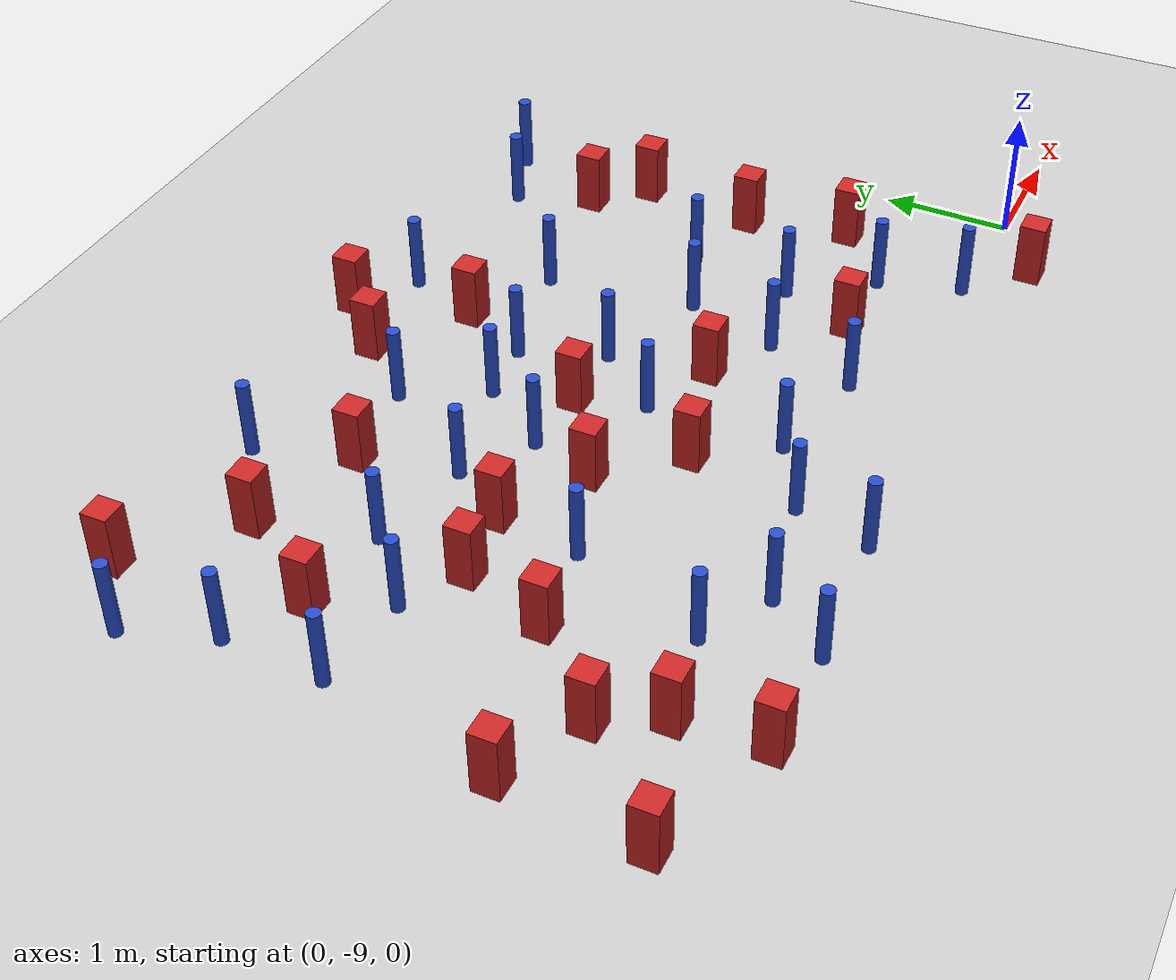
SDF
<sdf version="1.6">
 <world name="default">
  <model name="ground_plane">
   <static>1</static>
   <link name="link">
    <collision name="collision">
     <geometry><plane><normal>0 0 1</normal><size>100 100</size></plane></geometry>
     <surface><friction><ode><mu>100</mu><mu2>50</mu2></ode></friction></surface>
    </collision>
    <visual name="visual">
     <cast_shadows>0</cast_shadows>
     <geometry><plane><normal>0 0 1</normal><size>100 100</size></plane></geometry>
     <material>
      <ambient>1.0 1.0 1.0 1.0</ambient>
      <diffuse>0.8 0.8 0.8 1.0</diffuse>
      <specular>0.01 0.01 0.01 1.000000</specular>
     </material>
    </visual>
   </link>
  </model>
  <model name="square_post_obstacle4">
   <static>true</static>
   <pose>-5.67740192875 -7.65880468433 1.91545236811e-07 -7.35059704564e-06 1.12565212e-07 2.39332434364e-05</pose>
   <link name="link">
    <pose>0 0 0.25 0 -0 0</pose>
    <inertial>
     <mass>100</mass>
     <inertia>
      <ixx>0.166667</ixx>
      <ixy>0</ixy>
      <ixz>0</ixz>
      <iyy>0.166667</iyy>
      <iyz>0</iyz>
      <izz>0.166667</izz>
     </inertia>
    </inertial>
    <collision name="collision"><geometry><box><size>.2 .2 .5</size></box></geometry></collision>
    <visual name="visual">
     <geometry><box><size>.2 .2 .5</size></box></geometry>
     <material>
      <script><name>Gazebo/Red</name><uri>file://media/materials/scripts/gazebo.material</uri></script>
     </material>
    </visual>
   </link>
  </model>
  <model name="pole_obstacle8">
   <static>true</static>
   <pose>-4.06872563296 -6.78109198846 7.38925637345e-09 -8.47170692796e-08 1.24976764786e-08 -1.74513093032e-07</pose>
   <link name="link">
    <pose>0 0 0.3 0 -0 0</pose>
    <inertial>
     <mass>1</mass>
     <inertia><ixx>0.145833</ixx><ixy>0</ixy><ixz>0</ixz><iyy>0.145833</iyy><iyz>0</iyz><izz>0.125</izz></inertia>
    </inertial>
    <collision name="collision">
     <geometry><cylinder><radius>0.05</radius><length>.6</length></cylinder></geometry>
    </collision>
    <visual name="visual">
     <geometry><cylinder><radius>0.05</radius><length>.6</length></cylinder></geometry>
     <material>
      <script><name>Gazebo/Blue</name><uri>file://media/materials/scripts/gazebo.material</uri></script>
     </material>
    </visual>
   </link>
  </model>
  <model name="square_post_obstacle18">
   <static>true</static>
   <pose>-3.52603695999 -6.82466076162 1.91545236811e-07 -7.35059704564e-06 1.12565212e-07 2.39332434364e-05</pose>
   <link name="link">
    <pose>0 0 0.25 0 -0 0</pose>
    <inertial>
     <mass>100</mass>
     <inertia>
      <ixx>0.166667</ixx>
      <ixy>0</ixy>
      <ixz>0</ixz>
      <iyy>0.166667</iyy>
      <iyz>0</iyz>
      <izz>0.166667</izz>
     </inertia>
    </inertial>
    <collision name="collision"><geometry><box><size>.2 .2 .5</size></box></geometry></collision>
    <visual name="visual">
     <geometry><box><size>.2 .2 .5</size></box></geometry>
     <material>
      <script><name>Gazebo/Red</name><uri>file://media/materials/scripts/gazebo.material</uri></script>
     </material>
    </visual>
   </link>
  </model>
  <model name="pole_obstacle10">
   <static>true</static>
   <pose>-2.24000977725 -5.9753968946 7.38925637345e-09 -8.47170692798e-08 1.24976765033e-08 -1.74513093019e-07</pose>
   <link name="link">
    <pose>0 0 0.3 0 -0 0</pose>
    <inertial>
     <mass>1</mass>
     <inertia><ixx>0.145833</ixx><ixy>0</ixy><ixz>0</ixz><iyy>0.145833</iyy><iyz>0</iyz><izz>0.125</izz></inertia>
    </inertial>
    <collision name="collision">
     <geometry><cylinder><radius>0.05</radius><length>.6</length></cylinder></geometry>
    </collision>
    <visual name="visual">
     <geometry><cylinder><radius>0.05</radius><length>.6</length></cylinder></geometry>
     <material>
      <script><name>Gazebo/Blue</name><uri>file://media/materials/scripts/gazebo.material</uri></script>
     </material>
    </visual>
   </link>
  </model>
  <model name="square_post_obstacle23">
   <static>true</static>
   <pose>-1.86108736659 -8.30667899572 1.91545236811e-07 -7.35059704564e-06 1.12565212e-07 2.39332434364e-05</pose>
   <link name="link">
    <pose>0 0 0.25 0 -0 0</pose>
    <inertial>
     <mass>100</mass>
     <inertia>
      <ixx>0.166667</ixx>
      <ixy>0</ixy>
      <ixz>0</ixz>
      <iyy>0.166667</iyy>
      <iyz>0</iyz>
      <izz>0.166667</izz>
     </inertia>
    </inertial>
    <collision name="collision"><geometry><box><size>.2 .2 .5</size></box></geometry></collision>
    <visual name="visual">
     <geometry><box><size>.2 .2 .5</size></box></geometry>
     <material>
      <script><name>Gazebo/Red</name><uri>file://media/materials/scripts/gazebo.material</uri></script>
     </material>
    </visual>
   </link>
  </model>
  <model name="square_post_obstacle25">
   <static>true</static>
   <pose>-6.1199734361 -6.20377883608 1.91545236811e-07 -7.35059704564e-06 1.12565212e-07 2.39332434364e-05</pose>
   <link name="link">
    <pose>0 0 0.25 0 -0 0</pose>
    <inertial>
     <mass>100</mass>
     <inertia>
      <ixx>0.166667</ixx>
      <ixy>0</ixy>
      <ixz>0</ixz>
      <iyy>0.166667</iyy>
      <iyz>0</iyz>
      <izz>0.166667</izz>
     </inertia>
    </inertial>
    <collision name="collision"><geometry><box><size>.2 .2 .5</size></box></geometry></collision>
    <visual name="visual">
     <geometry><box><size>.2 .2 .5</size></box></geometry>
     <material>
      <script><name>Gazebo/Red</name><uri>file://media/materials/scripts/gazebo.material</uri></script>
     </material>
    </visual>
   </link>
  </model>
  <model name="square_post_obstacle28">
   <static>true</static>
   <pose>-0.678399505463 -7.88053539245 1.91545236811e-07 -7.35059704564e-06 1.12565212e-07 2.39332434364e-05</pose>
   <link name="link">
    <pose>0 0 0.25 0 -0 0</pose>
    <inertial>
     <mass>100</mass>
     <inertia>
      <ixx>0.166667</ixx>
      <ixy>0</ixy>
      <ixz>0</ixz>
      <iyy>0.166667</iyy>
      <iyz>0</iyz>
      <izz>0.166667</izz>
     </inertia>
    </inertial>
    <collision name="collision"><geometry><box><size>.2 .2 .5</size></box></geometry></collision>
    <visual name="visual">
     <geometry><box><size>.2 .2 .5</size></box></geometry>
     <material>
      <script><name>Gazebo/Red</name><uri>file://media/materials/scripts/gazebo.material</uri></script>
     </material>
    </visual>
   </link>
  </model>
  <model name="pole_obstacle28">
   <static>true</static>
   <pose>-2.69804235157 -5.05034035419 7.38925637345e-09 -8.47170692798e-08 1.24976765033e-08 -1.74513093019e-07</pose>
   <link name="link">
    <pose>0 0 0.3 0 -0 0</pose>
    <inertial>
     <mass>1</mass>
     <inertia><ixx>0.145833</ixx><ixy>0</ixy><ixz>0</ixz><iyy>0.145833</iyy><iyz>0</iyz><izz>0.125</izz></inertia>
    </inertial>
    <collision name="collision">
     <geometry><cylinder><radius>0.05</radius><length>.6</length></cylinder></geometry>
    </collision>
    <visual name="visual">
     <geometry><cylinder><radius>0.05</radius><length>.6</length></cylinder></geometry>
     <material>
      <script><name>Gazebo/Blue</name><uri>file://media/materials/scripts/gazebo.material</uri></script>
     </material>
    </visual>
   </link>
  </model>
  <model name="pole_obstacle30">
   <static>true</static>
   <pose>-0.749170889706 -4.99342743789 7.38925637345e-09 -8.471706928e-08 1.24976765086e-08 -1.74513093015e-07</pose>
   <link name="link">
    <pose>0 0 0.3 0 -0 0</pose>
    <inertial>
     <mass>1</mass>
     <inertia><ixx>0.145833</ixx><ixy>0</ixy><ixz>0</ixz><iyy>0.145833</iyy><iyz>0</iyz><izz>0.125</izz></inertia>
    </inertial>
    <collision name="collision">
     <geometry><cylinder><radius>0.05</radius><length>.6</length></cylinder></geometry>
    </collision>
    <visual name="visual">
     <geometry><cylinder><radius>0.05</radius><length>.6</length></cylinder></geometry>
     <material>
      <script><name>Gazebo/Blue</name><uri>file://media/materials/scripts/gazebo.material</uri></script>
     </material>
    </visual>
   </link>
  </model>
  <model name="pole_obstacle33">
   <static>true</static>
   <pose>-2.9397366712 -6.81391367461 7.38925637345e-09 -8.47170692798e-08 1.24976765033e-08 -1.74513093019e-07</pose>
   <link name="link">
    <pose>0 0 0.3 0 -0 0</pose>
    <inertial>
     <mass>1</mass>
     <inertia><ixx>0.145833</ixx><ixy>0</ixy><ixz>0</ixz><iyy>0.145833</iyy><iyz>0</iyz><izz>0.125</izz></inertia>
    </inertial>
    <collision name="collision">
     <geometry><cylinder><radius>0.05</radius><length>.6</length></cylinder></geometry>
    </collision>
    <visual name="visual">
     <geometry><cylinder><radius>0.05</radius><length>.6</length></cylinder></geometry>
     <material>
      <script><name>Gazebo/Blue</name><uri>file://media/materials/scripts/gazebo.material</uri></script>
     </material>
    </visual>
   </link>
  </model>
  <model name="pole_obstacle38">
   <static>true</static>
   <pose>-3.17716623244 -6.1789033547 7.38925637345e-09 -8.47170692794e-08 1.24976764468e-08 -1.7451309304e-07</pose>
   <link name="link">
    <pose>0 0 0.3 0 -0 0</pose>
    <inertial>
     <mass>1</mass>
     <inertia><ixx>0.145833</ixx><ixy>0</ixy><ixz>0</ixz><iyy>0.145833</iyy><iyz>0</iyz><izz>0.125</izz></inertia>
    </inertial>
    <collision name="collision">
     <geometry><cylinder><radius>0.05</radius><length>.6</length></cylinder></geometry>
    </collision>
    <visual name="visual">
     <geometry><cylinder><radius>0.05</radius><length>.6</length></cylinder></geometry>
     <material>
      <script><name>Gazebo/Blue</name><uri>file://media/materials/scripts/gazebo.material</uri></script>
     </material>
    </visual>
   </link>
  </model>
  <model name="pole_obstacle44">
   <static>true</static>
   <pose>-4.57552629762 -6.45222405119 7.38925637345e-09 -8.47170692796e-08 1.24976764786e-08 -1.74513093032e-07</pose>
   <link name="link">
    <pose>0 0 0.3 0 -0 0</pose>
    <inertial>
     <mass>1</mass>
     <inertia><ixx>0.145833</ixx><ixy>0</ixy><ixz>0</ixz><iyy>0.145833</iyy><iyz>0</iyz><izz>0.125</izz></inertia>
    </inertial>
    <collision name="collision">
     <geometry><cylinder><radius>0.05</radius><length>.6</length></cylinder></geometry>
    </collision>
    <visual name="visual">
     <geometry><cylinder><radius>0.05</radius><length>.6</length></cylinder></geometry>
     <material>
      <script><name>Gazebo/Blue</name><uri>file://media/materials/scripts/gazebo.material</uri></script>
     </material>
    </visual>
   </link>
  </model>
  <model name="pole_obstacle48">
   <static>true</static>
   <pose>-1.49067473335 -6.89552985593 7.38925637345e-09 -8.47170692799e-08 1.24976765033e-08 -1.74513093018e-07</pose>
   <link name="link">
    <pose>0 0 0.3 0 -0 0</pose>
    <inertial>
     <mass>1</mass>
     <inertia><ixx>0.145833</ixx><ixy>0</ixy><ixz>0</ixz><iyy>0.145833</iyy><iyz>0</iyz><izz>0.125</izz></inertia>
    </inertial>
    <collision name="collision">
     <geometry><cylinder><radius>0.05</radius><length>.6</length></cylinder></geometry>
    </collision>
    <visual name="visual">
     <geometry><cylinder><radius>0.05</radius><length>.6</length></cylinder></geometry>
     <material>
      <script><name>Gazebo/Blue</name><uri>file://media/materials/scripts/gazebo.material</uri></script>
     </material>
    </visual>
   </link>
  </model>
  <model name="pole_obstacle49">
   <static>true</static>
   <pose>-4.82207548972 -8.88022354547 7.38925637345e-09 -8.471706928e-08 1.24976765081e-08 -1.74513093015e-07</pose>
   <link name="link">
    <pose>0 0 0.3 0 -0 0</pose>
    <inertial>
     <mass>1</mass>
     <inertia><ixx>0.145833</ixx><ixy>0</ixy><ixz>0</ixz><iyy>0.145833</iyy><iyz>0</iyz><izz>0.125</izz></inertia>
    </inertial>
    <collision name="collision">
     <geometry><cylinder><radius>0.05</radius><length>.6</length></cylinder></geometry>
    </collision>
    <visual name="visual">
     <geometry><cylinder><radius>0.05</radius><length>.6</length></cylinder></geometry>
     <material>
      <script><name>Gazebo/Blue</name><uri>file://media/materials/scripts/gazebo.material</uri></script>
     </material>
    </visual>
   </link>
  </model>
  <model name="pole_obstacle66">
   <static>true</static>
   <pose>-4.09273205385 -9.27557864412 7.38925637345e-09 -8.471706928e-08 1.24976765081e-08 -1.74513093015e-07</pose>
   <link name="link">
    <pose>0 0 0.3 0 -0 0</pose>
    <inertial>
     <mass>1</mass>
     <inertia><ixx>0.145833</ixx><ixy>0</ixy><ixz>0</ixz><iyy>0.145833</iyy><iyz>0</iyz><izz>0.125</izz></inertia>
    </inertial>
    <collision name="collision">
     <geometry><cylinder><radius>0.05</radius><length>.6</length></cylinder></geometry>
    </collision>
    <visual name="visual">
     <geometry><cylinder><radius>0.05</radius><length>.6</length></cylinder></geometry>
     <material>
      <script><name>Gazebo/Blue</name><uri>file://media/materials/scripts/gazebo.material</uri></script>
     </material>
    </visual>
   </link>
  </model>
  <model name="square_post_obstacle69">
   <static>true</static>
   <pose>-0.837891639129 -7.0748849736 1.91545236811e-07 -7.35059704564e-06 1.12565212e-07 2.39332434364e-05</pose>
   <link name="link">
    <pose>0 0 0.25 0 -0 0</pose>
    <inertial>
     <mass>100</mass>
     <inertia>
      <ixx>0.166667</ixx>
      <ixy>0</ixy>
      <ixz>0</ixz>
      <iyy>0.166667</iyy>
      <iyz>0</iyz>
      <izz>0.166667</izz>
     </inertia>
    </inertial>
    <collision name="collision"><geometry><box><size>.2 .2 .5</size></box></geometry></collision>
    <visual name="visual">
     <geometry><box><size>.2 .2 .5</size></box></geometry>
     <material>
      <script><name>Gazebo/Red</name><uri>file://media/materials/scripts/gazebo.material</uri></script>
     </material>
    </visual>
   </link>
  </model>
  <model name="pole_obstacle67">
   <static>true</static>
   <pose>-4.96563736126 -5.00681654496 7.38925637345e-09 -8.47170692796e-08 1.24976764786e-08 -1.74513093032e-07</pose>
   <link name="link">
    <pose>0 0 0.3 0 -0 0</pose>
    <inertial>
     <mass>1</mass>
     <inertia><ixx>0.145833</ixx><ixy>0</ixy><ixz>0</ixz><iyy>0.145833</iyy><iyz>0</iyz><izz>0.125</izz></inertia>
    </inertial>
    <collision name="collision">
     <geometry><cylinder><radius>0.05</radius><length>.6</length></cylinder></geometry>
    </collision>
    <visual name="visual">
     <geometry><cylinder><radius>0.05</radius><length>.6</length></cylinder></geometry>
     <material>
      <script><name>Gazebo/Blue</name><uri>file://media/materials/scripts/gazebo.material</uri></script>
     </material>
    </visual>
   </link>
  </model>
  <model name="square_post_obstacle71">
   <static>true</static>
   <pose>-5.45312529908 -6.99596524487 1.91545236811e-07 -7.35059704564e-06 1.12565212e-07 2.39332434364e-05</pose>
   <link name="link">
    <pose>0 0 0.25 0 -0 0</pose>
    <inertial>
     <mass>100</mass>
     <inertia>
      <ixx>0.166667</ixx>
      <ixy>0</ixy>
      <ixz>0</ixz>
      <iyy>0.166667</iyy>
      <iyz>0</iyz>
      <izz>0.166667</izz>
     </inertia>
    </inertial>
    <collision name="collision"><geometry><box><size>.2 .2 .5</size></box></geometry></collision>
    <visual name="visual">
     <geometry><box><size>.2 .2 .5</size></box></geometry>
     <material>
      <script><name>Gazebo/Red</name><uri>file://media/materials/scripts/gazebo.material</uri></script>
     </material>
    </visual>
   </link>
  </model>
  <model name="pole_obstacle74">
   <static>true</static>
   <pose>-3.94244579799 -8.69810518039 7.38925637345e-09 -8.47170692793e-08 1.24976764408e-08 -1.74513093041e-07</pose>
   <link name="link">
    <pose>0 0 0.3 0 -0 0</pose>
    <inertial>
     <mass>1</mass>
     <inertia><ixx>0.145833</ixx><ixy>0</ixy><ixz>0</ixz><iyy>0.145833</iyy><iyz>0</iyz><izz>0.125</izz></inertia>
    </inertial>
    <collision name="collision">
     <geometry><cylinder><radius>0.05</radius><length>.6</length></cylinder></geometry>
    </collision>
    <visual name="visual">
     <geometry><cylinder><radius>0.05</radius><length>.6</length></cylinder></geometry>
     <material>
      <script><name>Gazebo/Blue</name><uri>file://media/materials/scripts/gazebo.material</uri></script>
     </material>
    </visual>
   </link>
  </model>
  <model name="pole_obstacle82">
   <static>true</static>
   <pose>-5.34162178956 -8.58294965085 7.38925637345e-09 -8.471706928e-08 1.24976765081e-08 -1.74513093015e-07</pose>
   <link name="link">
    <pose>0 0 0.3 0 -0 0</pose>
    <inertial>
     <mass>1</mass>
     <inertia><ixx>0.145833</ixx><ixy>0</ixy><ixz>0</ixz><iyy>0.145833</iyy><iyz>0</iyz><izz>0.125</izz></inertia>
    </inertial>
    <collision name="collision">
     <geometry><cylinder><radius>0.05</radius><length>.6</length></cylinder></geometry>
    </collision>
    <visual name="visual">
     <geometry><cylinder><radius>0.05</radius><length>.6</length></cylinder></geometry>
     <material>
      <script><name>Gazebo/Blue</name><uri>file://media/materials/scripts/gazebo.material</uri></script>
     </material>
    </visual>
   </link>
  </model>
  <model name="pole_obstacle85">
   <static>true</static>
   <pose>-2.07760983227 -7.12698199725 7.38925637345e-09 -8.47170692798e-08 1.24976765033e-08 -1.74513093019e-07</pose>
   <link name="link">
    <pose>0 0 0.3 0 -0 0</pose>
    <inertial>
     <mass>1</mass>
     <inertia><ixx>0.145833</ixx><ixy>0</ixy><ixz>0</ixz><iyy>0.145833</iyy><iyz>0</iyz><izz>0.125</izz></inertia>
    </inertial>
    <collision name="collision">
     <geometry><cylinder><radius>0.05</radius><length>.6</length></cylinder></geometry>
    </collision>
    <visual name="visual">
     <geometry><cylinder><radius>0.05</radius><length>.6</length></cylinder></geometry>
     <material>
      <script><name>Gazebo/Blue</name><uri>file://media/materials/scripts/gazebo.material</uri></script>
     </material>
    </visual>
   </link>
  </model>
  <model name="pole_obstacle86">
   <static>true</static>
   <pose>-3.36721677891 -7.32817130263 7.38925637345e-09 -8.47170692794e-08 1.24976764468e-08 -1.7451309304e-07</pose>
   <link name="link">
    <pose>0 0 0.3 0 -0 0</pose>
    <inertial>
     <mass>1</mass>
     <inertia><ixx>0.145833</ixx><ixy>0</ixy><ixz>0</ixz><iyy>0.145833</iyy><iyz>0</iyz><izz>0.125</izz></inertia>
    </inertial>
    <collision name="collision">
     <geometry><cylinder><radius>0.05</radius><length>.6</length></cylinder></geometry>
    </collision>
    <visual name="visual">
     <geometry><cylinder><radius>0.05</radius><length>.6</length></cylinder></geometry>
     <material>
      <script><name>Gazebo/Blue</name><uri>file://media/materials/scripts/gazebo.material</uri></script>
     </material>
    </visual>
   </link>
  </model>
  <model name="square_post_obstacle85">
   <static>true</static>
   <pose>-4.24555383658 -7.28909448333 1.91545236811e-07 -7.35059704564e-06 1.12565212e-07 2.39332434364e-05</pose>
   <link name="link">
    <pose>0 0 0.25 0 -0 0</pose>
    <inertial>
     <mass>100</mass>
     <inertia>
      <ixx>0.166667</ixx>
      <ixy>0</ixy>
      <ixz>0</ixz>
      <iyy>0.166667</iyy>
      <iyz>0</iyz>
      <izz>0.166667</izz>
     </inertia>
    </inertial>
    <collision name="collision"><geometry><box><size>.2 .2 .5</size></box></geometry></collision>
    <visual name="visual">
     <geometry><box><size>.2 .2 .5</size></box></geometry>
     <material>
      <script><name>Gazebo/Red</name><uri>file://media/materials/scripts/gazebo.material</uri></script>
     </material>
    </visual>
   </link>
  </model>
  <model name="square_post_obstacle89">
   <static>true</static>
   <pose>-0.577084453289 -9.35906345067 1.91545236811e-07 -7.35059704564e-06 1.12565212e-07 2.39332434364e-05</pose>
   <link name="link">
    <pose>0 0 0.25 0 -0 0</pose>
    <inertial>
     <mass>100</mass>
     <inertia>
      <ixx>0.166667</ixx>
      <ixy>0</ixy>
      <ixz>0</ixz>
      <iyy>0.166667</iyy>
      <iyz>0</iyz>
      <izz>0.166667</izz>
     </inertia>
    </inertial>
    <collision name="collision"><geometry><box><size>.2 .2 .5</size></box></geometry></collision>
    <visual name="visual">
     <geometry><box><size>.2 .2 .5</size></box></geometry>
     <material>
      <script><name>Gazebo/Red</name><uri>file://media/materials/scripts/gazebo.material</uri></script>
     </material>
    </visual>
   </link>
  </model>
  <model name="pole_obstacle110">
   <static>true</static>
   <pose>-6.60540538165 -5.86977234847 7.38925637345e-09 -8.47170692796e-08 1.24976764786e-08 -1.74513093032e-07</pose>
   <link name="link">
    <pose>0 0 0.3 0 -0 0</pose>
    <inertial>
     <mass>1</mass>
     <inertia><ixx>0.145833</ixx><ixy>0</ixy><ixz>0</ixz><iyy>0.145833</iyy><iyz>0</iyz><izz>0.125</izz></inertia>
    </inertial>
    <collision name="collision">
     <geometry><cylinder><radius>0.05</radius><length>.6</length></cylinder></geometry>
    </collision>
    <visual name="visual">
     <geometry><cylinder><radius>0.05</radius><length>.6</length></cylinder></geometry>
     <material>
      <script><name>Gazebo/Blue</name><uri>file://media/materials/scripts/gazebo.material</uri></script>
     </material>
    </visual>
   </link>
  </model>
  <model name="square_post_obstacle99">
   <static>true</static>
   <pose>-4.74569914821 -5.73688360788 1.91545236811e-07 -7.35059704564e-06 1.12565212e-07 2.39332434364e-05</pose>
   <link name="link">
    <pose>0 0 0.25 0 -0 0</pose>
    <inertial>
     <mass>100</mass>
     <inertia>
      <ixx>0.166667</ixx>
      <ixy>0</ixy>
      <ixz>0</ixz>
      <iyy>0.166667</iyy>
      <iyz>0</iyz>
      <izz>0.166667</izz>
     </inertia>
    </inertial>
    <collision name="collision"><geometry><box><size>.2 .2 .5</size></box></geometry></collision>
    <visual name="visual">
     <geometry><box><size>.2 .2 .5</size></box></geometry>
     <material>
      <script><name>Gazebo/Red</name><uri>file://media/materials/scripts/gazebo.material</uri></script>
     </material>
    </visual>
   </link>
  </model>
  <model name="square_post_obstacle100">
   <static>true</static>
   <pose>-6.28164705328 -8.27621207108 1.91545236811e-07 -7.35059704564e-06 1.12565212e-07 2.39332434364e-05</pose>
   <link name="link">
    <pose>0 0 0.25 0 -0 0</pose>
    <inertial>
     <mass>100</mass>
     <inertia>
      <ixx>0.166667</ixx>
      <ixy>0</ixy>
      <ixz>0</ixz>
      <iyy>0.166667</iyy>
      <iyz>0</iyz>
      <izz>0.166667</izz>
     </inertia>
    </inertial>
    <collision name="collision"><geometry><box><size>.2 .2 .5</size></box></geometry></collision>
    <visual name="visual">
     <geometry><box><size>.2 .2 .5</size></box></geometry>
     <material>
      <script><name>Gazebo/Red</name><uri>file://media/materials/scripts/gazebo.material</uri></script>
     </material>
    </visual>
   </link>
  </model>
  <model name="pole_obstacle120">
   <static>true</static>
   <pose>-6.82796881919 -5.2227189486 7.38925637345e-09 -8.47170692796e-08 1.24976764786e-08 -1.74513093032e-07</pose>
   <link name="link">
    <pose>0 0 0.3 0 -0 0</pose>
    <inertial>
     <mass>1</mass>
     <inertia><ixx>0.145833</ixx><ixy>0</ixy><ixz>0</ixz><iyy>0.145833</iyy><iyz>0</iyz><izz>0.125</izz></inertia>
    </inertial>
    <collision name="collision">
     <geometry><cylinder><radius>0.05</radius><length>.6</length></cylinder></geometry>
    </collision>
    <visual name="visual">
     <geometry><cylinder><radius>0.05</radius><length>.6</length></cylinder></geometry>
     <material>
      <script><name>Gazebo/Blue</name><uri>file://media/materials/scripts/gazebo.material</uri></script>
     </material>
    </visual>
   </link>
  </model>
  <model name="square_post_obstacle112">
   <static>true</static>
   <pose>-3.59576024668 -5.17177092835 1.91545236811e-07 -7.35059704564e-06 1.12565212e-07 2.39332434364e-05</pose>
   <link name="link">
    <pose>0 0 0.25 0 -0 0</pose>
    <inertial>
     <mass>100</mass>
     <inertia>
      <ixx>0.166667</ixx>
      <ixy>0</ixy>
      <ixz>0</ixz>
      <iyy>0.166667</iyy>
      <iyz>0</iyz>
      <izz>0.166667</izz>
     </inertia>
    </inertial>
    <collision name="collision"><geometry><box><size>.2 .2 .5</size></box></geometry></collision>
    <visual name="visual">
     <geometry><box><size>.2 .2 .5</size></box></geometry>
     <material>
      <script><name>Gazebo/Red</name><uri>file://media/materials/scripts/gazebo.material</uri></script>
     </material>
    </visual>
   </link>
  </model>
  <model name="pole_obstacle122">
   <static>true</static>
   <pose>-1.20031246389 -8.31445013104 7.38925637345e-09 -8.47170692798e-08 1.24976764881e-08 -1.74513093027e-07</pose>
   <link name="link">
    <pose>0 0 0.3 0 -0 0</pose>
    <inertial>
     <mass>1</mass>
     <inertia><ixx>0.145833</ixx><ixy>0</ixy><ixz>0</ixz><iyy>0.145833</iyy><iyz>0</iyz><izz>0.125</izz></inertia>
    </inertial>
    <collision name="collision">
     <geometry><cylinder><radius>0.05</radius><length>.6</length></cylinder></geometry>
    </collision>
    <visual name="visual">
     <geometry><cylinder><radius>0.05</radius><length>.6</length></cylinder></geometry>
     <material>
      <script><name>Gazebo/Blue</name><uri>file://media/materials/scripts/gazebo.material</uri></script>
     </material>
    </visual>
   </link>
  </model>
  <model name="square_post_obstacle114">
   <static>true</static>
   <pose>-3.76543544539 -7.84607150306 1.91545236811e-07 -7.35059704564e-06 1.12565212e-07 2.39332434364e-05</pose>
   <link name="link">
    <pose>0 0 0.25 0 -0 0</pose>
    <inertial>
     <mass>100</mass>
     <inertia>
      <ixx>0.166667</ixx>
      <ixy>0</ixy>
      <ixz>0</ixz>
      <iyy>0.166667</iyy>
      <iyz>0</iyz>
      <izz>0.166667</izz>
     </inertia>
    </inertial>
    <collision name="collision"><geometry><box><size>.2 .2 .5</size></box></geometry></collision>
    <visual name="visual">
     <geometry><box><size>.2 .2 .5</size></box></geometry>
     <material>
      <script><name>Gazebo/Red</name><uri>file://media/materials/scripts/gazebo.material</uri></script>
     </material>
    </visual>
   </link>
  </model>
  <model name="pole_obstacle131">
   <static>true</static>
   <pose>-5.16393632107 -9.35020786594 7.38925637345e-09 -8.471706928e-08 1.24976765081e-08 -1.74513093015e-07</pose>
   <link name="link">
    <pose>0 0 0.3 0 -0 0</pose>
    <inertial>
     <mass>1</mass>
     <inertia><ixx>0.145833</ixx><ixy>0</ixy><ixz>0</ixz><iyy>0.145833</iyy><iyz>0</iyz><izz>0.125</izz></inertia>
    </inertial>
    <collision name="collision">
     <geometry><cylinder><radius>0.05</radius><length>.6</length></cylinder></geometry>
    </collision>
    <visual name="visual">
     <geometry><cylinder><radius>0.05</radius><length>.6</length></cylinder></geometry>
     <material>
      <script><name>Gazebo/Blue</name><uri>file://media/materials/scripts/gazebo.material</uri></script>
     </material>
    </visual>
   </link>
  </model>
  <model name="pole_obstacle133">
   <static>true</static>
   <pose>-1.0067510438 -8.94405134077 7.38925637345e-09 -8.47170692798e-08 1.2497676492e-08 -1.74513093025e-07</pose>
   <link name="link">
    <pose>0 0 0.3 0 -0 0</pose>
    <inertial>
     <mass>1</mass>
     <inertia><ixx>0.145833</ixx><ixy>0</ixy><ixz>0</ixz><iyy>0.145833</iyy><iyz>0</iyz><izz>0.125</izz></inertia>
    </inertial>
    <collision name="collision">
     <geometry><cylinder><radius>0.05</radius><length>.6</length></cylinder></geometry>
    </collision>
    <visual name="visual">
     <geometry><cylinder><radius>0.05</radius><length>.6</length></cylinder></geometry>
     <material>
      <script><name>Gazebo/Blue</name><uri>file://media/materials/scripts/gazebo.material</uri></script>
     </material>
    </visual>
   </link>
  </model>
  <model name="square_post_obstacle123">
   <static>true</static>
   <pose>-1.0801636182 -5.78974485923 1.91545236811e-07 -7.35059704564e-06 1.12565212e-07 2.39332434364e-05</pose>
   <link name="link">
    <pose>0 0 0.25 0 -0 0</pose>
    <inertial>
     <mass>100</mass>
     <inertia>
      <ixx>0.166667</ixx>
      <ixy>0</ixy>
      <ixz>0</ixz>
      <iyy>0.166667</iyy>
      <iyz>0</iyz>
      <izz>0.166667</izz>
     </inertia>
    </inertial>
    <collision name="collision"><geometry><box><size>.2 .2 .5</size></box></geometry></collision>
    <visual name="visual">
     <geometry><box><size>.2 .2 .5</size></box></geometry>
     <material>
      <script><name>Gazebo/Red</name><uri>file://media/materials/scripts/gazebo.material</uri></script>
     </material>
    </visual>
   </link>
  </model>
  <model name="pole_obstacle140">
   <static>true</static>
   <pose>-3.37662900439 -8.38474245886 7.38925637345e-09 -8.47170692793e-08 1.24976764408e-08 -1.74513093041e-07</pose>
   <link name="link">
    <pose>0 0 0.3 0 -0 0</pose>
    <inertial>
     <mass>1</mass>
     <inertia><ixx>0.145833</ixx><ixy>0</ixy><ixz>0</ixz><iyy>0.145833</iyy><iyz>0</iyz><izz>0.125</izz></inertia>
    </inertial>
    <collision name="collision">
     <geometry><cylinder><radius>0.05</radius><length>.6</length></cylinder></geometry>
    </collision>
    <visual name="visual">
     <geometry><cylinder><radius>0.05</radius><length>.6</length></cylinder></geometry>
     <material>
      <script><name>Gazebo/Blue</name><uri>file://media/materials/scripts/gazebo.material</uri></script>
     </material>
    </visual>
   </link>
  </model>
  <model name="pole_obstacle143">
   <static>true</static>
   <pose>-4.96521525615 -7.55618263224 7.38925637345e-09 -8.47170692796e-08 1.24976764786e-08 -1.74513093032e-07</pose>
   <link name="link">
    <pose>0 0 0.3 0 -0 0</pose>
    <inertial>
     <mass>1</mass>
     <inertia><ixx>0.145833</ixx><ixy>0</ixy><ixz>0</ixz><iyy>0.145833</iyy><iyz>0</iyz><izz>0.125</izz></inertia>
    </inertial>
    <collision name="collision">
     <geometry><cylinder><radius>0.05</radius><length>.6</length></cylinder></geometry>
    </collision>
    <visual name="visual">
     <geometry><cylinder><radius>0.05</radius><length>.6</length></cylinder></geometry>
     <material>
      <script><name>Gazebo/Blue</name><uri>file://media/materials/scripts/gazebo.material</uri></script>
     </material>
    </visual>
   </link>
  </model>
  <model name="square_post_obstacle135">
   <static>true</static>
   <pose>-4.88677856861 -6.9160400494 1.91545236811e-07 -7.35059704564e-06 1.12565212e-07 2.39332434364e-05</pose>
   <link name="link">
    <pose>0 0 0.25 0 -0 0</pose>
    <inertial>
     <mass>100</mass>
     <inertia>
      <ixx>0.166667</ixx>
      <ixy>0</ixy>
      <ixz>0</ixz>
      <iyy>0.166667</iyy>
      <iyz>0</iyz>
      <izz>0.166667</izz>
     </inertia>
    </inertial>
    <collision name="collision"><geometry><box><size>.2 .2 .5</size></box></geometry></collision>
    <visual name="visual">
     <geometry><box><size>.2 .2 .5</size></box></geometry>
     <material>
      <script><name>Gazebo/Red</name><uri>file://media/materials/scripts/gazebo.material</uri></script>
     </material>
    </visual>
   </link>
  </model>
  <model name="pole_obstacle145">
   <static>true</static>
   <pose>-2.51496237166 -8.56334236374 7.38925637345e-09 -8.47170692793e-08 1.24976764408e-08 -1.74513093041e-07</pose>
   <link name="link">
    <pose>0 0 0.3 0 -0 0</pose>
    <inertial>
     <mass>1</mass>
     <inertia><ixx>0.145833</ixx><ixy>0</ixy><ixz>0</ixz><iyy>0.145833</iyy><iyz>0</iyz><izz>0.125</izz></inertia>
    </inertial>
    <collision name="collision">
     <geometry><cylinder><radius>0.05</radius><length>.6</length></cylinder></geometry>
    </collision>
    <visual name="visual">
     <geometry><cylinder><radius>0.05</radius><length>.6</length></cylinder></geometry>
     <material>
      <script><name>Gazebo/Blue</name><uri>file://media/materials/scripts/gazebo.material</uri></script>
     </material>
    </visual>
   </link>
  </model>
  <model name="pole_obstacle146">
   <static>true</static>
   <pose>-3.67680164554 -6.23430519797 7.38925637345e-09 -8.47170692794e-08 1.24976764468e-08 -1.7451309304e-07</pose>
   <link name="link">
    <pose>0 0 0.3 0 -0 0</pose>
    <inertial>
     <mass>1</mass>
     <inertia><ixx>0.145833</ixx><ixy>0</ixy><ixz>0</ixz><iyy>0.145833</iyy><iyz>0</iyz><izz>0.125</izz></inertia>
    </inertial>
    <collision name="collision">
     <geometry><cylinder><radius>0.05</radius><length>.6</length></cylinder></geometry>
    </collision>
    <visual name="visual">
     <geometry><cylinder><radius>0.05</radius><length>.6</length></cylinder></geometry>
     <material>
      <script><name>Gazebo/Blue</name><uri>file://media/materials/scripts/gazebo.material</uri></script>
     </material>
    </visual>
   </link>
  </model>
  <model name="pole_obstacle148">
   <static>true</static>
   <pose>-1.27283804495 -5.18535680295 7.38925637345e-09 -8.47170692799e-08 1.24976765033e-08 -1.74513093018e-07</pose>
   <link name="link">
    <pose>0 0 0.3 0 -0 0</pose>
    <inertial>
     <mass>1</mass>
     <inertia><ixx>0.145833</ixx><ixy>0</ixy><ixz>0</ixz><iyy>0.145833</iyy><iyz>0</iyz><izz>0.125</izz></inertia>
    </inertial>
    <collision name="collision">
     <geometry><cylinder><radius>0.05</radius><length>.6</length></cylinder></geometry>
    </collision>
    <visual name="visual">
     <geometry><cylinder><radius>0.05</radius><length>.6</length></cylinder></geometry>
     <material>
      <script><name>Gazebo/Blue</name><uri>file://media/materials/scripts/gazebo.material</uri></script>
     </material>
    </visual>
   </link>
  </model>
  <model name="square_post_obstacle160">
   <static>true</static>
   <pose>-6.04857025827 -8.72008792195 1.91545236811e-07 -7.35059704564e-06 1.12565212e-07 2.39332434364e-05</pose>
   <link name="link">
    <pose>0 0 0.25 0 -0 0</pose>
    <inertial>
     <mass>100</mass>
     <inertia>
      <ixx>0.166667</ixx>
      <ixy>0</ixy>
      <ixz>0</ixz>
      <iyy>0.166667</iyy>
      <iyz>0</iyz>
      <izz>0.166667</izz>
     </inertia>
    </inertial>
    <collision name="collision"><geometry><box><size>.2 .2 .5</size></box></geometry></collision>
    <visual name="visual">
     <geometry><box><size>.2 .2 .5</size></box></geometry>
     <material>
      <script><name>Gazebo/Red</name><uri>file://media/materials/scripts/gazebo.material</uri></script>
     </material>
    </visual>
   </link>
  </model>
  <model name="pole_obstacle169">
   <static>true</static>
   <pose>-2.30491373838 -7.86219595645 7.38925637345e-09 -8.47170692798e-08 1.24976765033e-08 -1.74513093019e-07</pose>
   <link name="link">
    <pose>0 0 0.3 0 -0 0</pose>
    <inertial>
     <mass>1</mass>
     <inertia><ixx>0.145833</ixx><ixy>0</ixy><ixz>0</ixz><iyy>0.145833</iyy><iyz>0</iyz><izz>0.125</izz></inertia>
    </inertial>
    <collision name="collision">
     <geometry><cylinder><radius>0.05</radius><length>.6</length></cylinder></geometry>
    </collision>
    <visual name="visual">
     <geometry><cylinder><radius>0.05</radius><length>.6</length></cylinder></geometry>
     <material>
      <script><name>Gazebo/Blue</name><uri>file://media/materials/scripts/gazebo.material</uri></script>
     </material>
    </visual>
   </link>
  </model>
  <model name="pole_obstacle176">
   <static>true</static>
   <pose>-6.63897442482 -6.6370112615 7.38925637345e-09 -8.47170692796e-08 1.24976764786e-08 -1.74513093032e-07</pose>
   <link name="link">
    <pose>0 0 0.3 0 -0 0</pose>
    <inertial>
     <mass>1</mass>
     <inertia><ixx>0.145833</ixx><ixy>0</ixy><ixz>0</ixz><iyy>0.145833</iyy><iyz>0</iyz><izz>0.125</izz></inertia>
    </inertial>
    <collision name="collision">
     <geometry><cylinder><radius>0.05</radius><length>.6</length></cylinder></geometry>
    </collision>
    <visual name="visual">
     <geometry><cylinder><radius>0.05</radius><length>.6</length></cylinder></geometry>
     <material>
      <script><name>Gazebo/Blue</name><uri>file://media/materials/scripts/gazebo.material</uri></script>
     </material>
    </visual>
   </link>
  </model>
  <model name="square_post_obstacle167">
   <static>true</static>
   <pose>-6.91127129762 -7.9669448742 1.91545236811e-07 -7.35059704564e-06 1.12565212e-07 2.39332434364e-05</pose>
   <link name="link">
    <pose>0 0 0.25 0 -0 0</pose>
    <inertial>
     <mass>100</mass>
     <inertia>
      <ixx>0.166667</ixx>
      <ixy>0</ixy>
      <ixz>0</ixz>
      <iyy>0.166667</iyy>
      <iyz>0</iyz>
      <izz>0.166667</izz>
     </inertia>
    </inertial>
    <collision name="collision"><geometry><box><size>.2 .2 .5</size></box></geometry></collision>
    <visual name="visual">
     <geometry><box><size>.2 .2 .5</size></box></geometry>
     <material>
      <script><name>Gazebo/Red</name><uri>file://media/materials/scripts/gazebo.material</uri></script>
     </material>
    </visual>
   </link>
  </model>
  <model name="square_post_obstacle171">
   <static>true</static>
   <pose>-3.16944534146 -4.75856263342 1.91545236811e-07 -7.35059704564e-06 1.12565212e-07 2.39332434364e-05</pose>
   <link name="link">
    <pose>0 0 0.25 0 -0 0</pose>
    <inertial>
     <mass>100</mass>
     <inertia>
      <ixx>0.166667</ixx>
      <ixy>0</ixy>
      <ixz>0</ixz>
      <iyy>0.166667</iyy>
      <iyz>0</iyz>
      <izz>0.166667</izz>
     </inertia>
    </inertial>
    <collision name="collision"><geometry><box><size>.2 .2 .5</size></box></geometry></collision>
    <visual name="visual">
     <geometry><box><size>.2 .2 .5</size></box></geometry>
     <material>
      <script><name>Gazebo/Red</name><uri>file://media/materials/scripts/gazebo.material</uri></script>
     </material>
    </visual>
   </link>
  </model>
  <model name="square_post_obstacle183">
   <static>true</static>
   <pose>-5.61755819582 -5.4624476731 1.91545236811e-07 -7.35059704564e-06 1.12565212e-07 2.39332434364e-05</pose>
   <link name="link">
    <pose>0 0 0.25 0 -0 0</pose>
    <inertial>
     <mass>100</mass>
     <inertia>
      <ixx>0.166667</ixx>
      <ixy>0</ixy>
      <ixz>0</ixz>
      <iyy>0.166667</iyy>
      <iyz>0</iyz>
      <izz>0.166667</izz>
     </inertia>
    </inertial>
    <collision name="collision"><geometry><box><size>.2 .2 .5</size></box></geometry></collision>
    <visual name="visual">
     <geometry><box><size>.2 .2 .5</size></box></geometry>
     <material>
      <script><name>Gazebo/Red</name><uri>file://media/materials/scripts/gazebo.material</uri></script>
     </material>
    </visual>
   </link>
  </model>
  <model name="square_post_obstacle191">
   <static>true</static>
   <pose>-6.99261821874 -9.00737471655 1.91545236811e-07 -7.35059704564e-06 1.12565212e-07 2.39332434364e-05</pose>
   <link name="link">
    <pose>0 0 0.25 0 -0 0</pose>
    <inertial>
     <mass>100</mass>
     <inertia>
      <ixx>0.166667</ixx>
      <ixy>0</ixy>
      <ixz>0</ixz>
      <iyy>0.166667</iyy>
      <iyz>0</iyz>
      <izz>0.166667</izz>
     </inertia>
    </inertial>
    <collision name="collision"><geometry><box><size>.2 .2 .5</size></box></geometry></collision>
    <visual name="visual">
     <geometry><box><size>.2 .2 .5</size></box></geometry>
     <material>
      <script><name>Gazebo/Red</name><uri>file://media/materials/scripts/gazebo.material</uri></script>
     </material>
    </visual>
   </link>
  </model>
  <model name="square_post_obstacle200">
   <static>true</static>
   <pose>-0.745398581233 -6.16180070533 1.91545236811e-07 -7.35059704564e-06 1.12565212e-07 2.39332434364e-05</pose>
   <link name="link">
    <pose>0 0 0.25 0 -0 0</pose>
    <inertial>
     <mass>100</mass>
     <inertia>
      <ixx>0.166667</ixx>
      <ixy>0</ixy>
      <ixz>0</ixz>
      <iyy>0.166667</iyy>
      <iyz>0</iyz>
      <izz>0.166667</izz>
     </inertia>
    </inertial>
    <collision name="collision"><geometry><box><size>.2 .2 .5</size></box></geometry></collision>
    <visual name="visual">
     <geometry><box><size>.2 .2 .5</size></box></geometry>
     <material>
      <script><name>Gazebo/Red</name><uri>file://media/materials/scripts/gazebo.material</uri></script>
     </material>
    </visual>
   </link>
  </model>
  <model name="square_post_obstacle203">
   <static>true</static>
   <pose>-6.32796611533 -4.83678788344 1.91545236811e-07 -7.35059704564e-06 1.12565212e-07 2.39332434364e-05</pose>
   <link name="link">
    <pose>0 0 0.25 0 -0 0</pose>
    <inertial>
     <mass>100</mass>
     <inertia>
      <ixx>0.166667</ixx>
      <ixy>0</ixy>
      <ixz>0</ixz>
      <iyy>0.166667</iyy>
      <iyz>0</iyz>
      <izz>0.166667</izz>
     </inertia>
    </inertial>
    <collision name="collision"><geometry><box><size>.2 .2 .5</size></box></geometry></collision>
    <visual name="visual">
     <geometry><box><size>.2 .2 .5</size></box></geometry>
     <material>
      <script><name>Gazebo/Red</name><uri>file://media/materials/scripts/gazebo.material</uri></script>
     </material>
    </visual>
   </link>
  </model>
  <model name="pole_obstacle197">
   <static>true</static>
   <pose>-1.61294306818 -7.71257821235 7.38925637345e-09 -8.47170692799e-08 1.24976765033e-08 -1.74513093018e-07</pose>
   <link name="link">
    <pose>0 0 0.3 0 -0 0</pose>
    <inertial>
     <mass>1</mass>
     <inertia><ixx>0.145833</ixx><ixy>0</ixy><ixz>0</ixz><iyy>0.145833</iyy><iyz>0</iyz><izz>0.125</izz></inertia>
    </inertial>
    <collision name="collision">
     <geometry><cylinder><radius>0.05</radius><length>.6</length></cylinder></geometry>
    </collision>
    <visual name="visual">
     <geometry><cylinder><radius>0.05</radius><length>.6</length></cylinder></geometry>
     <material>
      <script><name>Gazebo/Blue</name><uri>file://media/materials/scripts/gazebo.material</uri></script>
     </material>
    </visual>
   </link>
  </model>
  <model name="pole_obstacle211">
   <static>true</static>
   <pose>-5.88538925512 -6.72722325776 7.38925637345e-09 -8.47170692796e-08 1.24976764786e-08 -1.74513093032e-07</pose>
   <link name="link">
    <pose>0 0 0.3 0 -0 0</pose>
    <inertial>
     <mass>1</mass>
     <inertia><ixx>0.145833</ixx><ixy>0</ixy><ixz>0</ixz><iyy>0.145833</iyy><iyz>0</iyz><izz>0.125</izz></inertia>
    </inertial>
    <collision name="collision">
     <geometry><cylinder><radius>0.05</radius><length>.6</length></cylinder></geometry>
    </collision>
    <visual name="visual">
     <geometry><cylinder><radius>0.05</radius><length>.6</length></cylinder></geometry>
     <material>
      <script><name>Gazebo/Blue</name><uri>file://media/materials/scripts/gazebo.material</uri></script>
     </material>
    </visual>
   </link>
  </model>
  <model name="pole_obstacle214">
   <static>true</static>
   <pose>-4.00353253126 -5.63234158138 7.38925637345e-09 -8.47170692795e-08 1.24976764731e-08 -1.74513093035e-07</pose>
   <link name="link">
    <pose>0 0 0.3 0 -0 0</pose>
    <inertial>
     <mass>1</mass>
     <inertia><ixx>0.145833</ixx><ixy>0</ixy><ixz>0</ixz><iyy>0.145833</iyy><iyz>0</iyz><izz>0.125</izz></inertia>
    </inertial>
    <collision name="collision">
     <geometry><cylinder><radius>0.05</radius><length>.6</length></cylinder></geometry>
    </collision>
    <visual name="visual">
     <geometry><cylinder><radius>0.05</radius><length>.6</length></cylinder></geometry>
     <material>
      <script><name>Gazebo/Blue</name><uri>file://media/materials/scripts/gazebo.material</uri></script>
     </material>
    </visual>
   </link>
  </model>
  <model name="pole_obstacle218">
   <static>true</static>
   <pose>-5.3832342831 -6.2900661461 7.38925637345e-09 -8.47170692796e-08 1.24976764786e-08 -1.74513093032e-07</pose>
   <link name="link">
    <pose>0 0 0.3 0 -0 0</pose>
    <inertial>
     <mass>1</mass>
     <inertia><ixx>0.145833</ixx><ixy>0</ixy><ixz>0</ixz><iyy>0.145833</iyy><iyz>0</iyz><izz>0.125</izz></inertia>
    </inertial>
    <collision name="collision">
     <geometry><cylinder><radius>0.05</radius><length>.6</length></cylinder></geometry>
    </collision>
    <visual name="visual">
     <geometry><cylinder><radius>0.05</radius><length>.6</length></cylinder></geometry>
     <material>
      <script><name>Gazebo/Blue</name><uri>file://media/materials/scripts/gazebo.material</uri></script>
     </material>
    </visual>
   </link>
  </model>
  <model name="square_post_obstacle211">
   <static>true</static>
   <pose>-2.9198400352 -5.64699001192 1.91545236811e-07 -7.35059704564e-06 1.12565212e-07 2.39332434364e-05</pose>
   <link name="link">
    <pose>0 0 0.25 0 -0 0</pose>
    <inertial>
     <mass>100</mass>
     <inertia>
      <ixx>0.166667</ixx>
      <ixy>0</ixy>
      <ixz>0</ixz>
      <iyy>0.166667</iyy>
      <iyz>0</iyz>
      <izz>0.166667</izz>
     </inertia>
    </inertial>
    <collision name="collision"><geometry><box><size>.2 .2 .5</size></box></geometry></collision>
    <visual name="visual">
     <geometry><box><size>.2 .2 .5</size></box></geometry>
     <material>
      <script><name>Gazebo/Red</name><uri>file://media/materials/scripts/gazebo.material</uri></script>
     </material>
    </visual>
   </link>
  </model>
  <model name="square_post_obstacle213">
   <static>true</static>
   <pose>-2.8176400352 -7.57773001192 1.91545236811e-07 -7.35059704564e-06 1.12565212e-07 2.39332434364e-05</pose>
   <link name="link">
    <pose>0 0 0.25 0 -0 0</pose>
    <inertial>
     <mass>100</mass>
     <inertia>
      <ixx>0.166667</ixx>
      <ixy>0</ixy>
      <ixz>0</ixz>
      <iyy>0.166667</iyy>
      <iyz>0</iyz>
      <izz>0.166667</izz>
     </inertia>
    </inertial>
    <collision name="collision"><geometry><box><size>.2 .2 .5</size></box></geometry></collision>
    <visual name="visual">
     <geometry><box><size>.2 .2 .5</size></box></geometry>
     <material>
      <script><name>Gazebo/Red</name><uri>file://media/materials/scripts/gazebo.material</uri></script>
     </material>
    </visual>
   </link>
  </model>
  <model name="square_post_obstacle225">
   <static>true</static>
   <pose>-5.9991000352 -9.35230001192 1.91545236811e-07 -7.35059704564e-06 1.12565212e-07 2.39332434364e-05</pose>
   <link name="link">
    <pose>0 0 0.25 0 -0 0</pose>
    <inertial>
     <mass>100</mass>
     <inertia>
      <ixx>0.166667</ixx>
      <ixy>0</ixy>
      <ixz>0</ixz>
      <iyy>0.166667</iyy>
      <iyz>0</iyz>
      <izz>0.166667</izz>
     </inertia>
    </inertial>
    <collision name="collision"><geometry><box><size>.2 .2 .5</size></box></geometry></collision>
    <visual name="visual">
     <geometry><box><size>.2 .2 .5</size></box></geometry>
     <material>
      <script><name>Gazebo/Red</name><uri>file://media/materials/scripts/gazebo.material</uri></script>
     </material>
    </visual>
   </link>
  </model>
 </world>
</sdf>
